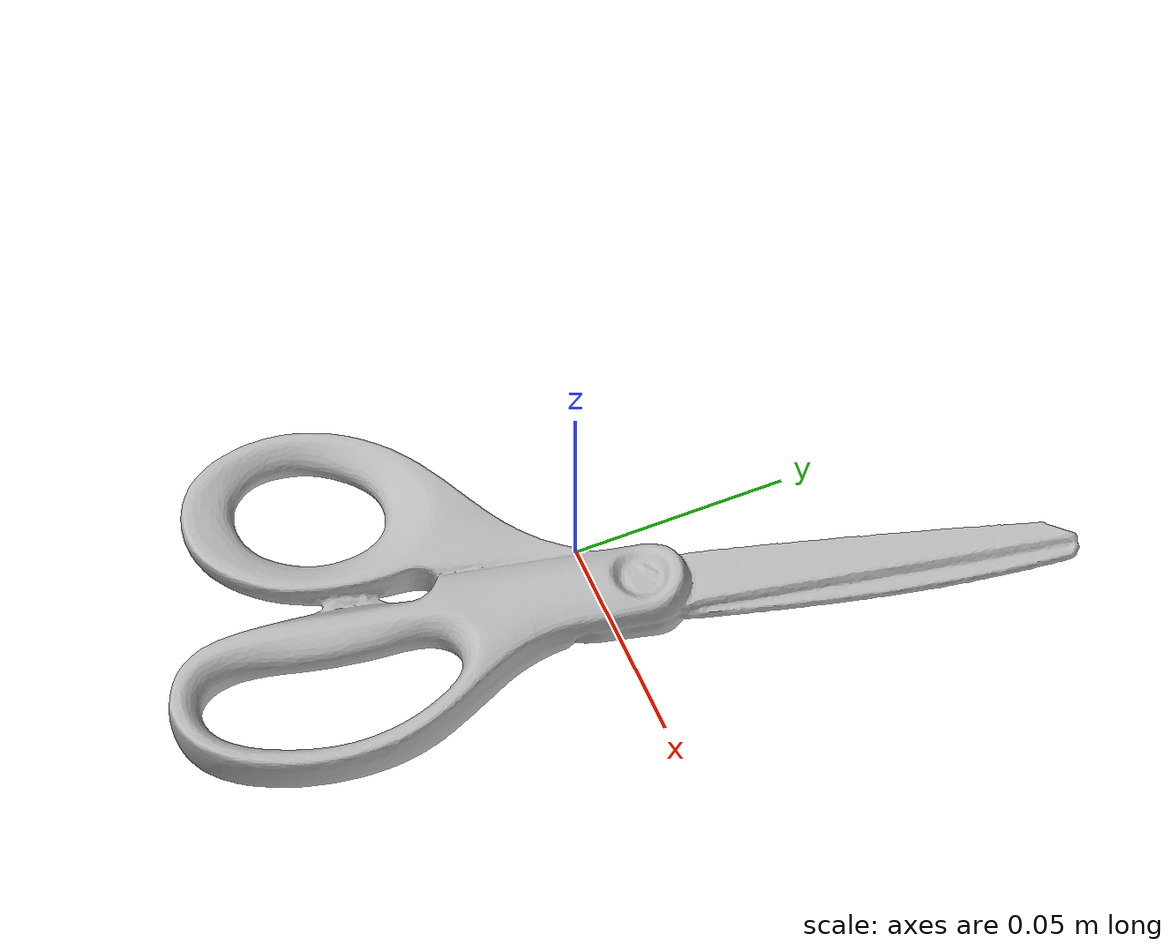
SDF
<?xml version="1.0" ?>
<sdf version='1.8'>
  <model name='ycb_037_scissors'>
    <link name='body'>
      <inertial>
        <mass>0.082</mass>
        <pose>0.00491652171 -0.0323508636 0.00767367432 0 0 0</pose>
        <inertia>
          <ixx>0.000115606742285</ixx>
          <ixy>-2.75484253168e-05</ixy>
          <ixz>-4.74821989584e-07</ixz>
          <iyy>3.85017848178e-05</iyy>
          <iyz>-5.17757427406e-07</iyz>
          <izz>0.000152325713996</izz>
        </inertia>
      </inertial>
      <visual name='ycb_037_scissors_visual'>
        <pose>-0.009675 -0.035513 0.000273 0 0 0</pose>
        <geometry>
          <mesh>
            <uri>model://ycb_037_scissors/meshes/textured.dae</uri>
          </mesh>
        </geometry>
      </visual>
      <collision name='ycb_037_scissors_collision'>
        <pose>-0.009675 -0.035513 0.000273 0 0 0</pose>
        <geometry>
          <mesh>
            <uri>model://ycb_037_scissors/meshes/nontextured.stl</uri>
          </mesh>
        </geometry>
        <max_contacts>10</max_contacts>
        <surface>
          <contact>
            <ode>
              <kp>1e15</kp>
              <kd>1e13</kd>
            </ode>
          </contact>
        </surface>
      </collision>
    </link>
  </model>
</sdf>
